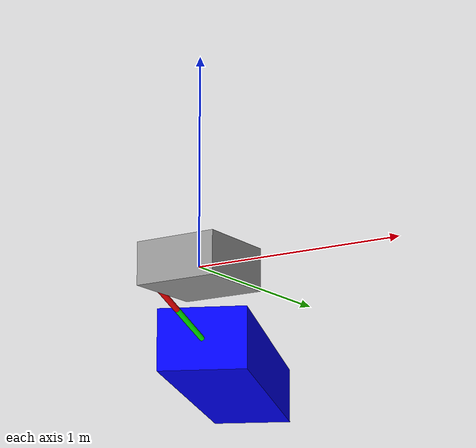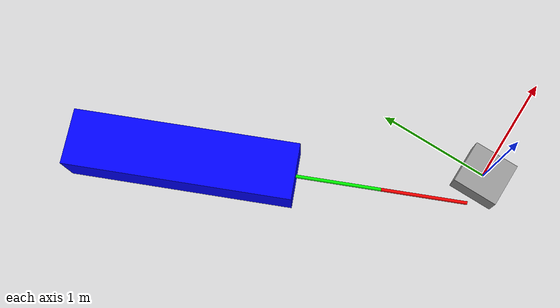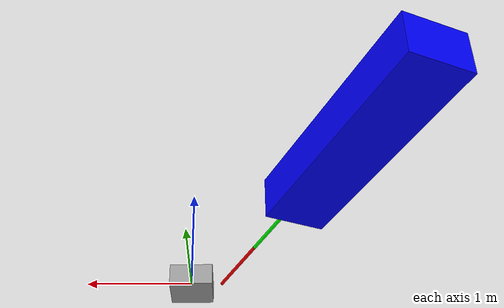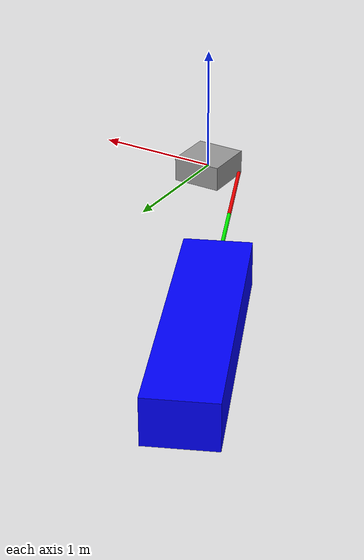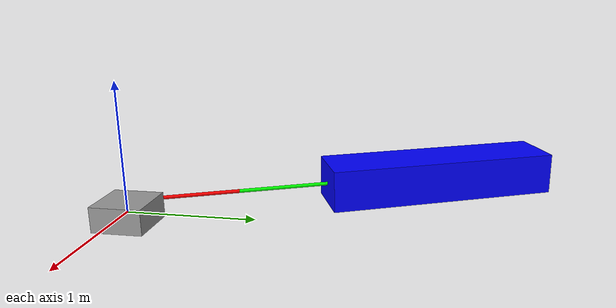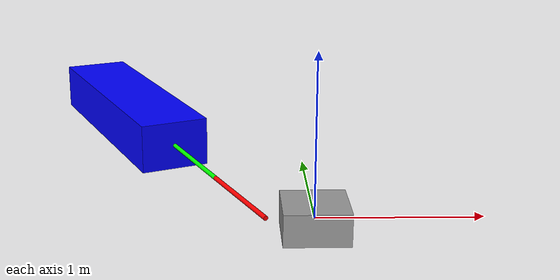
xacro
<?xml version="1.0"?>
<robot name="three_link_arm_flat" xmlns:xacro="http://www.ros.org/wiki/xacro">
  <!-- MARK: Inertias and masses -->
  <xacro:property name="inertiaLink1" value="0.186466" />
  <xacro:property name="inertiaLink2" value="0.186466" />
  <xacro:property name="inertiaLink3" value="15.4373" />

  <xacro:property name="massLink1" value="3.07" />
  <xacro:property name="massLink2" value="3.07" />
  <xacro:property name="massLink3" value="41.218" />

  <!-- MARK:  Geometry -->
  <xacro:property name="COMLink1" value="0.207655" />
  <xacro:property name="COMLink2" value="0.207655" />
  <xacro:property name="COMLink3" value="0.966762" />

  <xacro:property name="lengthLink1" value="0.75" />
  <xacro:property name="lengthLink2" value="0.75" />
  <xacro:property name="lengthLink3" value="2" />

  <xacro:property name="radiusLink1" value="0.015" />
  <xacro:property name="radiusLink2" value="0.015" />
  <xacro:property name="radiusLink3" value="0.015" />
  <!-- Delete the line above this once you make it not a cylinder -->
  <xacro:property name="heightPayload" value="0.5" />
  <xacro:property name="depthPayload" value="0.35" />

  <!-- MARK: Links -->
  <!-- Used to give the base a prismatic connection to the world (fixed except in y direction) -->
  <link name="world"/>
  <!-- 1 DOF base (joint will be added at bottom)-->
  <link name="base_link">
    <visual>
      <geometry>
        <box size="0.4 0.4 0.2"/>
      </geometry>

      <origin xyz="0 0 0"/>

      <material name="grey">
        <color rgba="0.6 0.6 0.6 1"/>
      </material>

    </visual>

    <collision>
      <geometry>
        <box size="0.4 0.4 0.2"/>
      </geometry>

      <origin xyz="0 0 0"/>

    </collision>

    <inertial>
      <origin xyz="0 0 0" rpy="0 0 0"/>

      <mass value="1.0"/>

      <inertia ixx="0.001" ixy="0.0" ixz="0.0" iyy="0.001" iyz="0.0" izz="0.001"/>

    </inertial>

  </link>

  <!-- Link 1 -->
  <link name="link1">
    <visual>
      <geometry>
        <cylinder radius="${radiusLink1}" length="${lengthLink1}"/>
      </geometry>
      <!-- Rotate cylinder so it lies along X-axis -->
      <origin xyz="${lengthLink1 / 2} 0 0" rpy="0 1.5708 0"/>

      <material name="red">
        <color rgba="1 0 0 1"/>
      </material>

    </visual>

    <collision>
      <geometry>
        <cylinder radius="${radiusLink1}" length="${lengthLink1}"/>
      </geometry>

      <origin xyz="${lengthLink1 / 2} 0 0" rpy="0 1.5708 0"/>

    </collision>

    <inertial>
      <origin xyz="${COMLink1} 0 0" rpy="0 0 0"/>
      <mass value="${massLink1}"/>
      <inertia ixx="${inertiaLink1}" ixy="0.0" ixz="0.0" iyy="${inertiaLink1}" iyz="0.0" izz="${inertiaLink1}"/>
    </inertial>
  </link>

  <!-- Link 2 -->
  <link name="link2">
    <visual>
      <geometry>
        <cylinder radius="${radiusLink2}" length="${lengthLink2}"/>
      </geometry>

      <origin xyz="${lengthLink2 / 2} 0 0" rpy="0 1.5708 0"/>

      <material name="green">
        <color rgba="0 1 0 1"/>
      </material>

    </visual>

    <collision>
      <geometry>
        <cylinder radius="${radiusLink2}" length="${lengthLink2}"/>
      </geometry>

      <origin xyz="${lengthLink2 / 2} 0 0" rpy="0 1.5708 0"/>

    </collision>

    <inertial>
      <origin xyz="${COMLink2} 0 0" rpy="0 0 0"/>
      <mass value="${massLink2}"/>
      <inertia ixx="${inertiaLink2}" ixy="0.0" ixz="0.0" iyy="${inertiaLink2}" iyz="0.0" izz="${inertiaLink2}"/>
    </inertial>
  </link>

  <!-- Link 3 -->
  <link name="link3">
    <visual>
      <geometry>
        <box size="${lengthLink3} ${heightPayload} ${depthPayload}"/>
      </geometry>

      <origin xyz="${lengthLink3 / 2} 0 0" rpy="0 0 0"/>

      <material name="blue">
        <color rgba="0 0 1 1"/>
      </material>

    </visual>

    <collision>
      <geometry>
        <box size="${lengthLink3} ${heightPayload} ${depthPayload}"/>
      </geometry>

      <origin xyz="${lengthLink3 / 2} 0 0" rpy="0 1.5708 0"/>

    </collision>

    <inertial>
      <origin xyz="${COMLink3} 0 0" rpy="0 0 0"/>
      <mass value="${massLink3}"/>
      <inertia ixx="${inertiaLink3}" ixy="0.0" ixz="0.0" iyy="${inertiaLink3}" iyz="0.0" izz="${inertiaLink3}"/>
    </inertial>

  </link>

  <!-- MARK: Joints -->
  <!-- Prismatic joints -->
  <joint name="world_to_base" type="prismatic">
    <parent link="world"/>
    <child link="base_link"/>
    <origin xyz="0 0 0"/>
    <axis xyz="0 1 0"/> <!-- movement along Y -->
    <limit lower="-5.0" upper="200.0" effort="50" velocity="5.0"/>
  </joint>

  <!-- Revolute joints -->
  <joint name="joint1" type="revolute">
    <parent link="base_link"/>
    <child link="link1"/>
    <origin xyz="-0.288677297 0.0 0"/>
    <axis xyz="0 0 1"/>
    <limit effort="100000" velocity="100000" lower="0.4" upper="3.57"/>
    <dynamics damping="0.0" friction="0.0"/>
  </joint>

  <joint name="joint2" type="revolute">
    <parent link="link1"/>
    <child link="link2"/>
    <origin xyz="${lengthLink1} 0 0"/>
    <axis xyz="0 0 1"/>
    <limit effort="100000" velocity="100000" lower="-2.89" upper="0.5"/>
    <dynamics damping="0.0" friction="0.0"/>
  </joint>

  <joint name="joint3" type="revolute">
    <parent link="link2"/>
    <child link="link3"/>
    <origin xyz="${lengthLink2} 0 0"/>
    <axis xyz="0 0 1"/>
    <limit effort="100000" velocity="100000" lower="-0.6" upper="2.57"/>
    <dynamics damping="0.0" friction="0.0"/>
  </joint>

  <!-- MARK: ROS 2 Control -->
  <ros2_control name="GazeboSimSystem" type="system">
    <hardware>
     <plugin>gz_ros2_control/GazeboSimSystem</plugin>
   </hardware>
   <joint name="world_to_base">
      <command_interface name="position"/>
      <command_interface name="velocity"/>
      <state_interface name="position"/>
      <state_interface name="velocity"/>
   </joint>

   <joint name="joint1">
      <command_interface name="effort">
        <param name="min">-100000</param>
        <param name="max">100000</param>
      </command_interface>
      <state_interface name="position">
        <param name="initial_value">1.984107747</param>
      </state_interface>
      <state_interface name="velocity"/>
      <state_interface name="effort"/>
      <hardwareInterface>EffortJointInterface</hardwareInterface>

   </joint>

   <joint name="joint2">
      <command_interface name="effort">
        <param name="min">-100000</param>
        <param name="max">100000</param>
      </command_interface>
     <state_interface name="position">
        <param name="initial_value">-1.318508983</param>
     </state_interface>
     <state_interface name="velocity"/>
     <state_interface name="effort"/>
     <hardwareInterface>EffortJointInterface</hardwareInterface>

   </joint>

    <joint name="joint3">
      <command_interface name="effort">
        <param name="min">-100000</param>
        <param name="max">100000</param>
      </command_interface>
     <state_interface name="position">
        <param name="initial_value">0.905197563</param>
     </state_interface>
     <state_interface name="velocity"/>
     <state_interface name="effort"/>
     <hardwareInterface>EffortJointInterface</hardwareInterface>

    </joint>
  </ros2_control>

  <!-- MARK: Gazebo Plugin -->
<gazebo>
  <plugin filename="/opt/ros/jazzy/lib/libgz_ros2_control-system.so" name="gz_ros2_control::GazeboSimROS2ControlPlugin">
    <parameters>/home/dwidjaja/Skyforge/src/skyforge_controllers/config/three_link_arm_controllers.yaml</parameters>
  </plugin>
</gazebo>

</robot>
